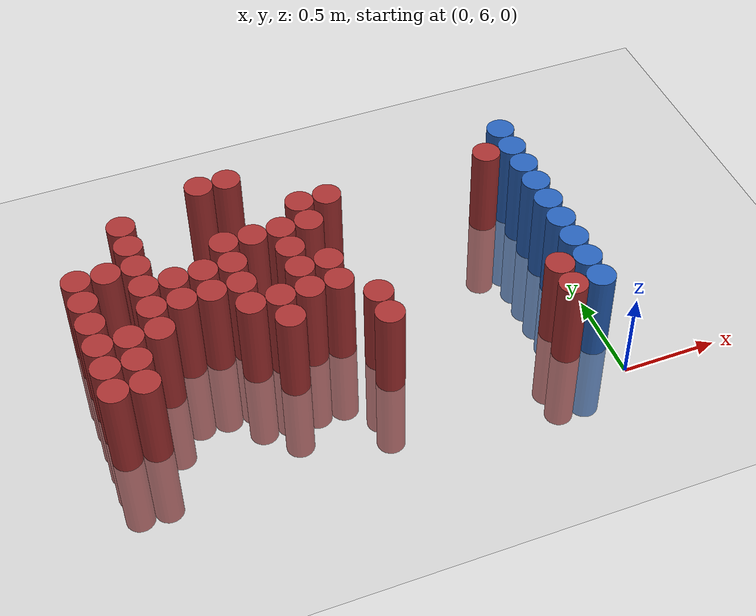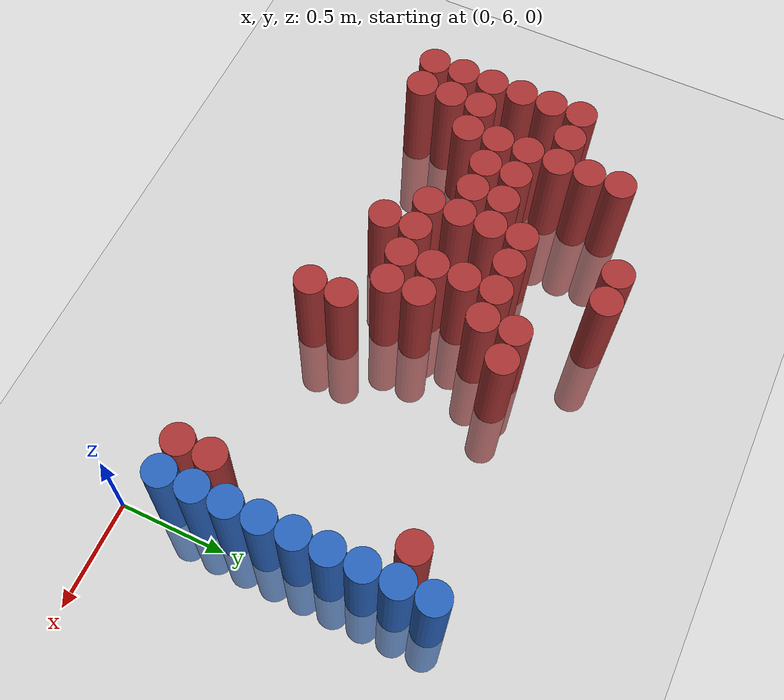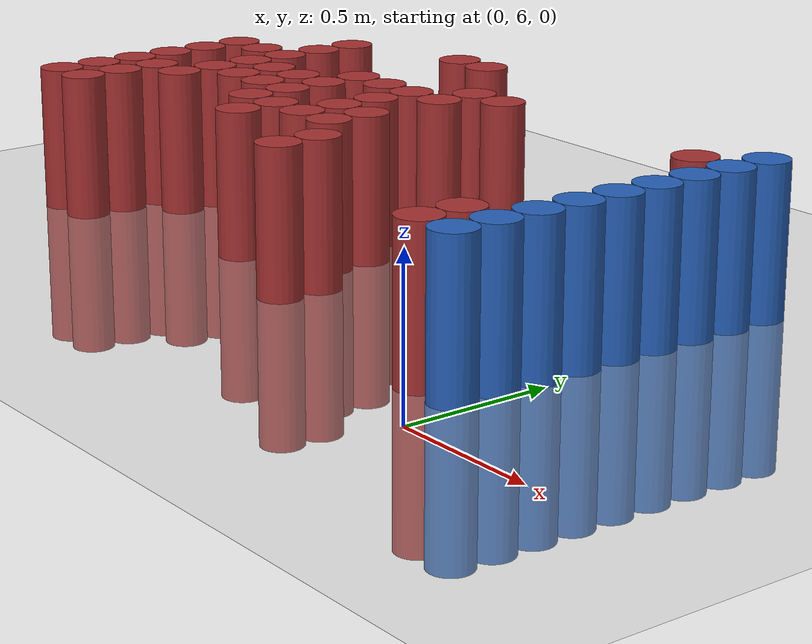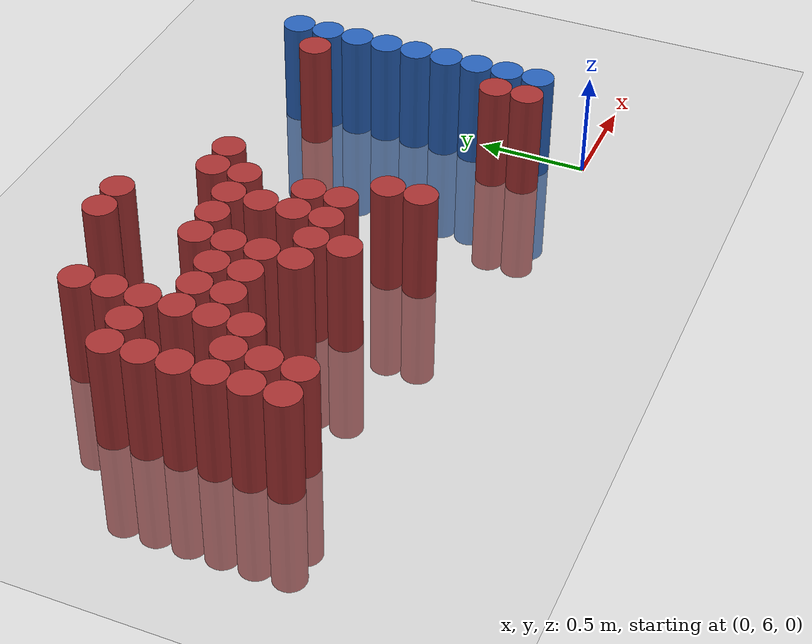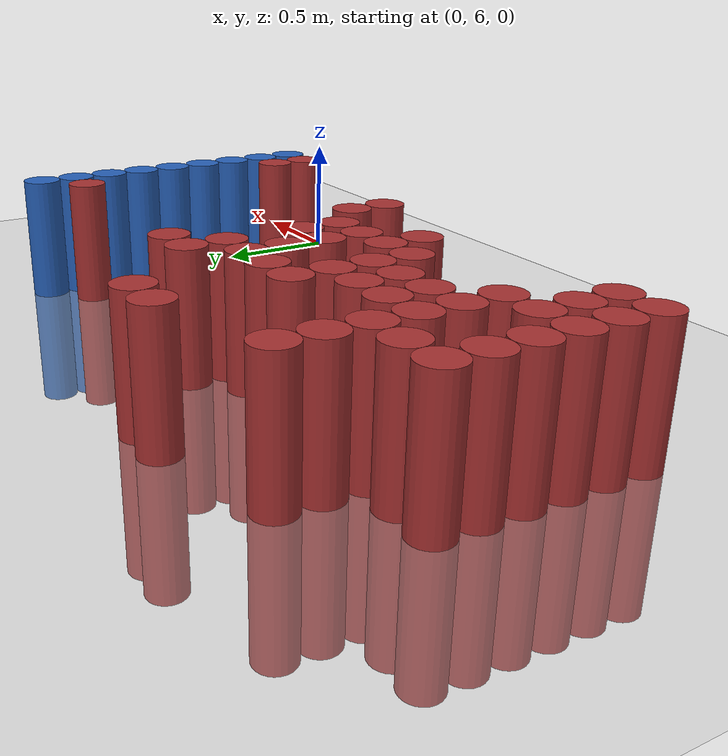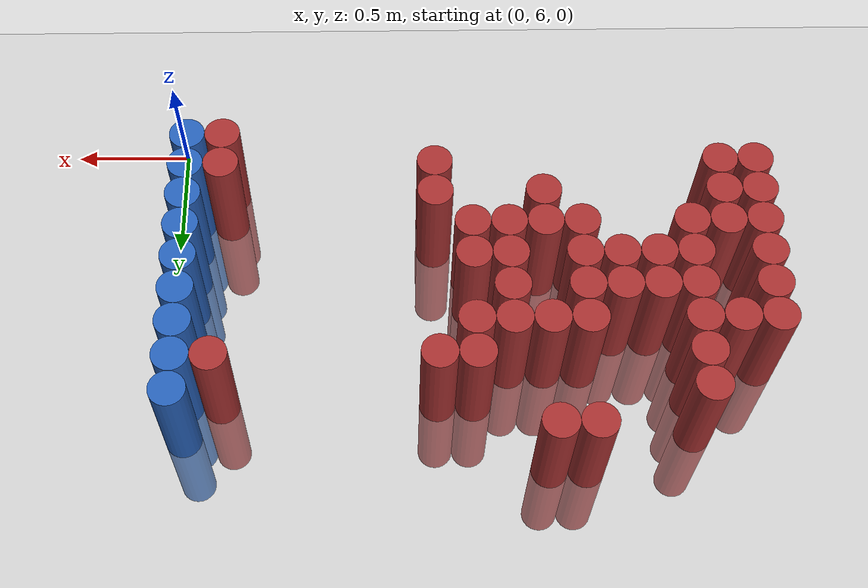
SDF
<sdf version="1.6">
 <world name="default">
  <model name="ground_plane">
   <static>1</static>
   <link name="link">
    <collision name="collision">
     <geometry><plane><normal>0 0 1</normal><size>100 100</size></plane></geometry>
     <surface><friction><ode><mu>100</mu><mu2>50</mu2></ode></friction></surface>
    </collision>
    <visual name="visual">
     <cast_shadows>0</cast_shadows>
     <geometry><plane><normal>0 0 1</normal><size>100 100</size></plane></geometry>
     <material>
      <script><uri>file://media/materials/scripts/gazebo.material</uri><name>Gazebo/Grey</name></script>
     </material>
    </visual>
   </link>
  </model>
  <model name="unit_cylinder_232">
   <static>1</static>
   <pose>-2.475000 6.375000 0.000000 0.000000 0.000000 0.000000</pose>
   <link name="link">
    <inertial>
     <mass>1</mass>
     <inertia><ixx>0.145833</ixx><ixy>0</ixy><ixz>0</ixz><iyy>0.145833</iyy><iyz>0</iyz><izz>0.125</izz></inertia>
    </inertial>
    <collision name="collision">
     <geometry><cylinder><radius>0.075000</radius><length>1</length></cylinder></geometry>
    </collision>
    <visual name="visual">
     <geometry><cylinder><radius>0.075000</radius><length>1</length></cylinder></geometry>
     <material>
      <ambient>0.648000 0.192000 0.192000 1</ambient>
      <diffuse>0.648000 0.192000 0.192000 1</diffuse>
     </material>
     <material>
      <script><name>Gazebo/Grey</name><uri>file://media/materials/scripts/gazebo.material</uri></script>
     </material>
    </visual>
   </link>
  </model>
  <model name="unit_cylinder_233">
   <static>1</static>
   <pose>-2.475000 6.525000 0.000000 0.000000 0.000000 0.000000</pose>
   <link name="link">
    <inertial>
     <mass>1</mass>
     <inertia><ixx>0.145833</ixx><ixy>0</ixy><ixz>0</ixz><iyy>0.145833</iyy><iyz>0</iyz><izz>0.125</izz></inertia>
    </inertial>
    <collision name="collision">
     <geometry><cylinder><radius>0.075000</radius><length>1</length></cylinder></geometry>
    </collision>
    <visual name="visual">
     <geometry><cylinder><radius>0.075000</radius><length>1</length></cylinder></geometry>
     <material>
      <ambient>0.648000 0.192000 0.192000 1</ambient>
      <diffuse>0.648000 0.192000 0.192000 1</diffuse>
     </material>
     <material>
      <script><name>Gazebo/Grey</name><uri>file://media/materials/scripts/gazebo.material</uri></script>
     </material>
    </visual>
   </link>
  </model>
  <model name="unit_cylinder_234">
   <static>1</static>
   <pose>-2.475000 6.675000 0.000000 0.000000 0.000000 0.000000</pose>
   <link name="link">
    <inertial>
     <mass>1</mass>
     <inertia><ixx>0.145833</ixx><ixy>0</ixy><ixz>0</ixz><iyy>0.145833</iyy><iyz>0</iyz><izz>0.125</izz></inertia>
    </inertial>
    <collision name="collision">
     <geometry><cylinder><radius>0.075000</radius><length>1</length></cylinder></geometry>
    </collision>
    <visual name="visual">
     <geometry><cylinder><radius>0.075000</radius><length>1</length></cylinder></geometry>
     <material>
      <ambient>0.648000 0.192000 0.192000 1</ambient>
      <diffuse>0.648000 0.192000 0.192000 1</diffuse>
     </material>
     <material>
      <script><name>Gazebo/Grey</name><uri>file://media/materials/scripts/gazebo.material</uri></script>
     </material>
    </visual>
   </link>
  </model>
  <model name="unit_cylinder_235">
   <static>1</static>
   <pose>-2.475000 6.825000 0.000000 0.000000 0.000000 0.000000</pose>
   <link name="link">
    <inertial>
     <mass>1</mass>
     <inertia><ixx>0.145833</ixx><ixy>0</ixy><ixz>0</ixz><iyy>0.145833</iyy><iyz>0</iyz><izz>0.125</izz></inertia>
    </inertial>
    <collision name="collision">
     <geometry><cylinder><radius>0.075000</radius><length>1</length></cylinder></geometry>
    </collision>
    <visual name="visual">
     <geometry><cylinder><radius>0.075000</radius><length>1</length></cylinder></geometry>
     <material>
      <ambient>0.648000 0.192000 0.192000 1</ambient>
      <diffuse>0.648000 0.192000 0.192000 1</diffuse>
     </material>
     <material>
      <script><name>Gazebo/Grey</name><uri>file://media/materials/scripts/gazebo.material</uri></script>
     </material>
    </visual>
   </link>
  </model>
  <model name="unit_cylinder_236">
   <static>1</static>
   <pose>-2.475000 6.975000 0.000000 0.000000 0.000000 0.000000</pose>
   <link name="link">
    <inertial>
     <mass>1</mass>
     <inertia><ixx>0.145833</ixx><ixy>0</ixy><ixz>0</ixz><iyy>0.145833</iyy><iyz>0</iyz><izz>0.125</izz></inertia>
    </inertial>
    <collision name="collision">
     <geometry><cylinder><radius>0.075000</radius><length>1</length></cylinder></geometry>
    </collision>
    <visual name="visual">
     <geometry><cylinder><radius>0.075000</radius><length>1</length></cylinder></geometry>
     <material>
      <ambient>0.648000 0.192000 0.192000 1</ambient>
      <diffuse>0.648000 0.192000 0.192000 1</diffuse>
     </material>
     <material>
      <script><name>Gazebo/Grey</name><uri>file://media/materials/scripts/gazebo.material</uri></script>
     </material>
    </visual>
   </link>
  </model>
  <model name="unit_cylinder_237">
   <static>1</static>
   <pose>-2.475000 7.125000 0.000000 0.000000 0.000000 0.000000</pose>
   <link name="link">
    <inertial>
     <mass>1</mass>
     <inertia><ixx>0.145833</ixx><ixy>0</ixy><ixz>0</ixz><iyy>0.145833</iyy><iyz>0</iyz><izz>0.125</izz></inertia>
    </inertial>
    <collision name="collision">
     <geometry><cylinder><radius>0.075000</radius><length>1</length></cylinder></geometry>
    </collision>
    <visual name="visual">
     <geometry><cylinder><radius>0.075000</radius><length>1</length></cylinder></geometry>
     <material>
      <ambient>0.648000 0.192000 0.192000 1</ambient>
      <diffuse>0.648000 0.192000 0.192000 1</diffuse>
     </material>
     <material>
      <script><name>Gazebo/Grey</name><uri>file://media/materials/scripts/gazebo.material</uri></script>
     </material>
    </visual>
   </link>
  </model>
  <model name="unit_cylinder_246">
   <static>1</static>
   <pose>-2.325000 6.375000 0.000000 0.000000 0.000000 0.000000</pose>
   <link name="link">
    <inertial>
     <mass>1</mass>
     <inertia><ixx>0.145833</ixx><ixy>0</ixy><ixz>0</ixz><iyy>0.145833</iyy><iyz>0</iyz><izz>0.125</izz></inertia>
    </inertial>
    <collision name="collision">
     <geometry><cylinder><radius>0.075000</radius><length>1</length></cylinder></geometry>
    </collision>
    <visual name="visual">
     <geometry><cylinder><radius>0.075000</radius><length>1</length></cylinder></geometry>
     <material>
      <ambient>0.648000 0.192000 0.192000 1</ambient>
      <diffuse>0.648000 0.192000 0.192000 1</diffuse>
     </material>
     <material>
      <script><name>Gazebo/Grey</name><uri>file://media/materials/scripts/gazebo.material</uri></script>
     </material>
    </visual>
   </link>
  </model>
  <model name="unit_cylinder_247">
   <static>1</static>
   <pose>-2.325000 6.525000 0.000000 0.000000 0.000000 0.000000</pose>
   <link name="link">
    <inertial>
     <mass>1</mass>
     <inertia><ixx>0.145833</ixx><ixy>0</ixy><ixz>0</ixz><iyy>0.145833</iyy><iyz>0</iyz><izz>0.125</izz></inertia>
    </inertial>
    <collision name="collision">
     <geometry><cylinder><radius>0.075000</radius><length>1</length></cylinder></geometry>
    </collision>
    <visual name="visual">
     <geometry><cylinder><radius>0.075000</radius><length>1</length></cylinder></geometry>
     <material>
      <ambient>0.648000 0.192000 0.192000 1</ambient>
      <diffuse>0.648000 0.192000 0.192000 1</diffuse>
     </material>
     <material>
      <script><name>Gazebo/Grey</name><uri>file://media/materials/scripts/gazebo.material</uri></script>
     </material>
    </visual>
   </link>
  </model>
  <model name="unit_cylinder_248">
   <static>1</static>
   <pose>-2.325000 6.675000 0.000000 0.000000 0.000000 0.000000</pose>
   <link name="link">
    <inertial>
     <mass>1</mass>
     <inertia><ixx>0.145833</ixx><ixy>0</ixy><ixz>0</ixz><iyy>0.145833</iyy><iyz>0</iyz><izz>0.125</izz></inertia>
    </inertial>
    <collision name="collision">
     <geometry><cylinder><radius>0.075000</radius><length>1</length></cylinder></geometry>
    </collision>
    <visual name="visual">
     <geometry><cylinder><radius>0.075000</radius><length>1</length></cylinder></geometry>
     <material>
      <ambient>0.648000 0.192000 0.192000 1</ambient>
      <diffuse>0.648000 0.192000 0.192000 1</diffuse>
     </material>
     <material>
      <script><name>Gazebo/Grey</name><uri>file://media/materials/scripts/gazebo.material</uri></script>
     </material>
    </visual>
   </link>
  </model>
  <model name="unit_cylinder_249">
   <static>1</static>
   <pose>-2.325000 7.125000 0.000000 0.000000 0.000000 0.000000</pose>
   <link name="link">
    <inertial>
     <mass>1</mass>
     <inertia><ixx>0.145833</ixx><ixy>0</ixy><ixz>0</ixz><iyy>0.145833</iyy><iyz>0</iyz><izz>0.125</izz></inertia>
    </inertial>
    <collision name="collision">
     <geometry><cylinder><radius>0.075000</radius><length>1</length></cylinder></geometry>
    </collision>
    <visual name="visual">
     <geometry><cylinder><radius>0.075000</radius><length>1</length></cylinder></geometry>
     <material>
      <ambient>0.648000 0.192000 0.192000 1</ambient>
      <diffuse>0.648000 0.192000 0.192000 1</diffuse>
     </material>
     <material>
      <script><name>Gazebo/Grey</name><uri>file://media/materials/scripts/gazebo.material</uri></script>
     </material>
    </visual>
   </link>
  </model>
  <model name="unit_cylinder_255">
   <static>1</static>
   <pose>-2.175000 6.675000 0.000000 0.000000 0.000000 0.000000</pose>
   <link name="link">
    <inertial>
     <mass>1</mass>
     <inertia><ixx>0.145833</ixx><ixy>0</ixy><ixz>0</ixz><iyy>0.145833</iyy><iyz>0</iyz><izz>0.125</izz></inertia>
    </inertial>
    <collision name="collision">
     <geometry><cylinder><radius>0.075000</radius><length>1</length></cylinder></geometry>
    </collision>
    <visual name="visual">
     <geometry><cylinder><radius>0.075000</radius><length>1</length></cylinder></geometry>
     <material>
      <ambient>0.648000 0.192000 0.192000 1</ambient>
      <diffuse>0.648000 0.192000 0.192000 1</diffuse>
     </material>
     <material>
      <script><name>Gazebo/Grey</name><uri>file://media/materials/scripts/gazebo.material</uri></script>
     </material>
    </visual>
   </link>
  </model>
  <model name="unit_cylinder_256">
   <static>1</static>
   <pose>-2.175000 6.825000 0.000000 0.000000 0.000000 0.000000</pose>
   <link name="link">
    <inertial>
     <mass>1</mass>
     <inertia><ixx>0.145833</ixx><ixy>0</ixy><ixz>0</ixz><iyy>0.145833</iyy><iyz>0</iyz><izz>0.125</izz></inertia>
    </inertial>
    <collision name="collision">
     <geometry><cylinder><radius>0.075000</radius><length>1</length></cylinder></geometry>
    </collision>
    <visual name="visual">
     <geometry><cylinder><radius>0.075000</radius><length>1</length></cylinder></geometry>
     <material>
      <ambient>0.648000 0.192000 0.192000 1</ambient>
      <diffuse>0.648000 0.192000 0.192000 1</diffuse>
     </material>
     <material>
      <script><name>Gazebo/Grey</name><uri>file://media/materials/scripts/gazebo.material</uri></script>
     </material>
    </visual>
   </link>
  </model>
  <model name="unit_cylinder_257">
   <static>1</static>
   <pose>-2.175000 6.975000 0.000000 0.000000 0.000000 0.000000</pose>
   <link name="link">
    <inertial>
     <mass>1</mass>
     <inertia><ixx>0.145833</ixx><ixy>0</ixy><ixz>0</ixz><iyy>0.145833</iyy><iyz>0</iyz><izz>0.125</izz></inertia>
    </inertial>
    <collision name="collision">
     <geometry><cylinder><radius>0.075000</radius><length>1</length></cylinder></geometry>
    </collision>
    <visual name="visual">
     <geometry><cylinder><radius>0.075000</radius><length>1</length></cylinder></geometry>
     <material>
      <ambient>0.648000 0.192000 0.192000 1</ambient>
      <diffuse>0.648000 0.192000 0.192000 1</diffuse>
     </material>
     <material>
      <script><name>Gazebo/Grey</name><uri>file://media/materials/scripts/gazebo.material</uri></script>
     </material>
    </visual>
   </link>
  </model>
  <model name="unit_cylinder_258">
   <static>1</static>
   <pose>-2.175000 7.125000 0.000000 0.000000 0.000000 0.000000</pose>
   <link name="link">
    <inertial>
     <mass>1</mass>
     <inertia><ixx>0.145833</ixx><ixy>0</ixy><ixz>0</ixz><iyy>0.145833</iyy><iyz>0</iyz><izz>0.125</izz></inertia>
    </inertial>
    <collision name="collision">
     <geometry><cylinder><radius>0.075000</radius><length>1</length></cylinder></geometry>
    </collision>
    <visual name="visual">
     <geometry><cylinder><radius>0.075000</radius><length>1</length></cylinder></geometry>
     <material>
      <ambient>0.648000 0.192000 0.192000 1</ambient>
      <diffuse>0.648000 0.192000 0.192000 1</diffuse>
     </material>
     <material>
      <script><name>Gazebo/Grey</name><uri>file://media/materials/scripts/gazebo.material</uri></script>
     </material>
    </visual>
   </link>
  </model>
  <model name="unit_cylinder_259">
   <static>1</static>
   <pose>-2.175000 7.275000 0.000000 0.000000 0.000000 0.000000</pose>
   <link name="link">
    <inertial>
     <mass>1</mass>
     <inertia><ixx>0.145833</ixx><ixy>0</ixy><ixz>0</ixz><iyy>0.145833</iyy><iyz>0</iyz><izz>0.125</izz></inertia>
    </inertial>
    <collision name="collision">
     <geometry><cylinder><radius>0.075000</radius><length>1</length></cylinder></geometry>
    </collision>
    <visual name="visual">
     <geometry><cylinder><radius>0.075000</radius><length>1</length></cylinder></geometry>
     <material>
      <ambient>0.648000 0.192000 0.192000 1</ambient>
      <diffuse>0.648000 0.192000 0.192000 1</diffuse>
     </material>
     <material>
      <script><name>Gazebo/Grey</name><uri>file://media/materials/scripts/gazebo.material</uri></script>
     </material>
    </visual>
   </link>
  </model>
  <model name="unit_cylinder_260">
   <static>1</static>
   <pose>-2.175000 7.425000 0.000000 0.000000 0.000000 0.000000</pose>
   <link name="link">
    <inertial>
     <mass>1</mass>
     <inertia><ixx>0.145833</ixx><ixy>0</ixy><ixz>0</ixz><iyy>0.145833</iyy><iyz>0</iyz><izz>0.125</izz></inertia>
    </inertial>
    <collision name="collision">
     <geometry><cylinder><radius>0.075000</radius><length>1</length></cylinder></geometry>
    </collision>
    <visual name="visual">
     <geometry><cylinder><radius>0.075000</radius><length>1</length></cylinder></geometry>
     <material>
      <ambient>0.648000 0.192000 0.192000 1</ambient>
      <diffuse>0.648000 0.192000 0.192000 1</diffuse>
     </material>
     <material>
      <script><name>Gazebo/Grey</name><uri>file://media/materials/scripts/gazebo.material</uri></script>
     </material>
    </visual>
   </link>
  </model>
  <model name="unit_cylinder_263">
   <static>1</static>
   <pose>-2.025000 6.825000 0.000000 0.000000 0.000000 0.000000</pose>
   <link name="link">
    <inertial>
     <mass>1</mass>
     <inertia><ixx>0.145833</ixx><ixy>0</ixy><ixz>0</ixz><iyy>0.145833</iyy><iyz>0</iyz><izz>0.125</izz></inertia>
    </inertial>
    <collision name="collision">
     <geometry><cylinder><radius>0.075000</radius><length>1</length></cylinder></geometry>
    </collision>
    <visual name="visual">
     <geometry><cylinder><radius>0.075000</radius><length>1</length></cylinder></geometry>
     <material>
      <ambient>0.648000 0.192000 0.192000 1</ambient>
      <diffuse>0.648000 0.192000 0.192000 1</diffuse>
     </material>
     <material>
      <script><name>Gazebo/Grey</name><uri>file://media/materials/scripts/gazebo.material</uri></script>
     </material>
    </visual>
   </link>
  </model>
  <model name="unit_cylinder_264">
   <static>1</static>
   <pose>-2.025000 6.975000 0.000000 0.000000 0.000000 0.000000</pose>
   <link name="link">
    <inertial>
     <mass>1</mass>
     <inertia><ixx>0.145833</ixx><ixy>0</ixy><ixz>0</ixz><iyy>0.145833</iyy><iyz>0</iyz><izz>0.125</izz></inertia>
    </inertial>
    <collision name="collision">
     <geometry><cylinder><radius>0.075000</radius><length>1</length></cylinder></geometry>
    </collision>
    <visual name="visual">
     <geometry><cylinder><radius>0.075000</radius><length>1</length></cylinder></geometry>
     <material>
      <ambient>0.648000 0.192000 0.192000 1</ambient>
      <diffuse>0.648000 0.192000 0.192000 1</diffuse>
     </material>
     <material>
      <script><name>Gazebo/Grey</name><uri>file://media/materials/scripts/gazebo.material</uri></script>
     </material>
    </visual>
   </link>
  </model>
  <model name="unit_cylinder_271">
   <static>1</static>
   <pose>-1.875000 6.825000 0.000000 0.000000 0.000000 0.000000</pose>
   <link name="link">
    <inertial>
     <mass>1</mass>
     <inertia><ixx>0.145833</ixx><ixy>0</ixy><ixz>0</ixz><iyy>0.145833</iyy><iyz>0</iyz><izz>0.125</izz></inertia>
    </inertial>
    <collision name="collision">
     <geometry><cylinder><radius>0.075000</radius><length>1</length></cylinder></geometry>
    </collision>
    <visual name="visual">
     <geometry><cylinder><radius>0.075000</radius><length>1</length></cylinder></geometry>
     <material>
      <ambient>0.648000 0.192000 0.192000 1</ambient>
      <diffuse>0.648000 0.192000 0.192000 1</diffuse>
     </material>
     <material>
      <script><name>Gazebo/Grey</name><uri>file://media/materials/scripts/gazebo.material</uri></script>
     </material>
    </visual>
   </link>
  </model>
  <model name="unit_cylinder_272">
   <static>1</static>
   <pose>-1.875000 6.975000 0.000000 0.000000 0.000000 0.000000</pose>
   <link name="link">
    <inertial>
     <mass>1</mass>
     <inertia><ixx>0.145833</ixx><ixy>0</ixy><ixz>0</ixz><iyy>0.145833</iyy><iyz>0</iyz><izz>0.125</izz></inertia>
    </inertial>
    <collision name="collision">
     <geometry><cylinder><radius>0.075000</radius><length>1</length></cylinder></geometry>
    </collision>
    <visual name="visual">
     <geometry><cylinder><radius>0.075000</radius><length>1</length></cylinder></geometry>
     <material>
      <ambient>0.648000 0.192000 0.192000 1</ambient>
      <diffuse>0.648000 0.192000 0.192000 1</diffuse>
     </material>
     <material>
      <script><name>Gazebo/Grey</name><uri>file://media/materials/scripts/gazebo.material</uri></script>
     </material>
    </visual>
   </link>
  </model>
  <model name="unit_cylinder_281">
   <static>1</static>
   <pose>-1.725000 6.675000 0.000000 0.000000 0.000000 0.000000</pose>
   <link name="link">
    <inertial>
     <mass>1</mass>
     <inertia><ixx>0.145833</ixx><ixy>0</ixy><ixz>0</ixz><iyy>0.145833</iyy><iyz>0</iyz><izz>0.125</izz></inertia>
    </inertial>
    <collision name="collision">
     <geometry><cylinder><radius>0.075000</radius><length>1</length></cylinder></geometry>
    </collision>
    <visual name="visual">
     <geometry><cylinder><radius>0.075000</radius><length>1</length></cylinder></geometry>
     <material>
      <ambient>0.648000 0.192000 0.192000 1</ambient>
      <diffuse>0.648000 0.192000 0.192000 1</diffuse>
     </material>
     <material>
      <script><name>Gazebo/Grey</name><uri>file://media/materials/scripts/gazebo.material</uri></script>
     </material>
    </visual>
   </link>
  </model>
  <model name="unit_cylinder_282">
   <static>1</static>
   <pose>-1.725000 6.825000 0.000000 0.000000 0.000000 0.000000</pose>
   <link name="link">
    <inertial>
     <mass>1</mass>
     <inertia><ixx>0.145833</ixx><ixy>0</ixy><ixz>0</ixz><iyy>0.145833</iyy><iyz>0</iyz><izz>0.125</izz></inertia>
    </inertial>
    <collision name="collision">
     <geometry><cylinder><radius>0.075000</radius><length>1</length></cylinder></geometry>
    </collision>
    <visual name="visual">
     <geometry><cylinder><radius>0.075000</radius><length>1</length></cylinder></geometry>
     <material>
      <ambient>0.648000 0.192000 0.192000 1</ambient>
      <diffuse>0.648000 0.192000 0.192000 1</diffuse>
     </material>
     <material>
      <script><name>Gazebo/Grey</name><uri>file://media/materials/scripts/gazebo.material</uri></script>
     </material>
    </visual>
   </link>
  </model>
  <model name="unit_cylinder_283">
   <static>1</static>
   <pose>-1.725000 6.975000 0.000000 0.000000 0.000000 0.000000</pose>
   <link name="link">
    <inertial>
     <mass>1</mass>
     <inertia><ixx>0.145833</ixx><ixy>0</ixy><ixz>0</ixz><iyy>0.145833</iyy><iyz>0</iyz><izz>0.125</izz></inertia>
    </inertial>
    <collision name="collision">
     <geometry><cylinder><radius>0.075000</radius><length>1</length></cylinder></geometry>
    </collision>
    <visual name="visual">
     <geometry><cylinder><radius>0.075000</radius><length>1</length></cylinder></geometry>
     <material>
      <ambient>0.648000 0.192000 0.192000 1</ambient>
      <diffuse>0.648000 0.192000 0.192000 1</diffuse>
     </material>
     <material>
      <script><name>Gazebo/Grey</name><uri>file://media/materials/scripts/gazebo.material</uri></script>
     </material>
    </visual>
   </link>
  </model>
  <model name="unit_cylinder_284">
   <static>1</static>
   <pose>-1.725000 7.125000 0.000000 0.000000 0.000000 0.000000</pose>
   <link name="link">
    <inertial>
     <mass>1</mass>
     <inertia><ixx>0.145833</ixx><ixy>0</ixy><ixz>0</ixz><iyy>0.145833</iyy><iyz>0</iyz><izz>0.125</izz></inertia>
    </inertial>
    <collision name="collision">
     <geometry><cylinder><radius>0.075000</radius><length>1</length></cylinder></geometry>
    </collision>
    <visual name="visual">
     <geometry><cylinder><radius>0.075000</radius><length>1</length></cylinder></geometry>
     <material>
      <ambient>0.648000 0.192000 0.192000 1</ambient>
      <diffuse>0.648000 0.192000 0.192000 1</diffuse>
     </material>
     <material>
      <script><name>Gazebo/Grey</name><uri>file://media/materials/scripts/gazebo.material</uri></script>
     </material>
    </visual>
   </link>
  </model>
  <model name="unit_cylinder_285">
   <static>1</static>
   <pose>-1.725000 7.575000 0.000000 0.000000 0.000000 0.000000</pose>
   <link name="link">
    <inertial>
     <mass>1</mass>
     <inertia><ixx>0.145833</ixx><ixy>0</ixy><ixz>0</ixz><iyy>0.145833</iyy><iyz>0</iyz><izz>0.125</izz></inertia>
    </inertial>
    <collision name="collision">
     <geometry><cylinder><radius>0.075000</radius><length>1</length></cylinder></geometry>
    </collision>
    <visual name="visual">
     <geometry><cylinder><radius>0.075000</radius><length>1</length></cylinder></geometry>
     <material>
      <ambient>0.648000 0.192000 0.192000 1</ambient>
      <diffuse>0.648000 0.192000 0.192000 1</diffuse>
     </material>
     <material>
      <script><name>Gazebo/Grey</name><uri>file://media/materials/scripts/gazebo.material</uri></script>
     </material>
    </visual>
   </link>
  </model>
  <model name="unit_cylinder_294">
   <static>1</static>
   <pose>-1.575000 6.525000 0.000000 0.000000 0.000000 0.000000</pose>
   <link name="link">
    <inertial>
     <mass>1</mass>
     <inertia><ixx>0.145833</ixx><ixy>0</ixy><ixz>0</ixz><iyy>0.145833</iyy><iyz>0</iyz><izz>0.125</izz></inertia>
    </inertial>
    <collision name="collision">
     <geometry><cylinder><radius>0.075000</radius><length>1</length></cylinder></geometry>
    </collision>
    <visual name="visual">
     <geometry><cylinder><radius>0.075000</radius><length>1</length></cylinder></geometry>
     <material>
      <ambient>0.648000 0.192000 0.192000 1</ambient>
      <diffuse>0.648000 0.192000 0.192000 1</diffuse>
     </material>
     <material>
      <script><name>Gazebo/Grey</name><uri>file://media/materials/scripts/gazebo.material</uri></script>
     </material>
    </visual>
   </link>
  </model>
  <model name="unit_cylinder_295">
   <static>1</static>
   <pose>-1.575000 6.675000 0.000000 0.000000 0.000000 0.000000</pose>
   <link name="link">
    <inertial>
     <mass>1</mass>
     <inertia><ixx>0.145833</ixx><ixy>0</ixy><ixz>0</ixz><iyy>0.145833</iyy><iyz>0</iyz><izz>0.125</izz></inertia>
    </inertial>
    <collision name="collision">
     <geometry><cylinder><radius>0.075000</radius><length>1</length></cylinder></geometry>
    </collision>
    <visual name="visual">
     <geometry><cylinder><radius>0.075000</radius><length>1</length></cylinder></geometry>
     <material>
      <ambient>0.648000 0.192000 0.192000 1</ambient>
      <diffuse>0.648000 0.192000 0.192000 1</diffuse>
     </material>
     <material>
      <script><name>Gazebo/Grey</name><uri>file://media/materials/scripts/gazebo.material</uri></script>
     </material>
    </visual>
   </link>
  </model>
  <model name="unit_cylinder_296">
   <static>1</static>
   <pose>-1.575000 7.125000 0.000000 0.000000 0.000000 0.000000</pose>
   <link name="link">
    <inertial>
     <mass>1</mass>
     <inertia><ixx>0.145833</ixx><ixy>0</ixy><ixz>0</ixz><iyy>0.145833</iyy><iyz>0</iyz><izz>0.125</izz></inertia>
    </inertial>
    <collision name="collision">
     <geometry><cylinder><radius>0.075000</radius><length>1</length></cylinder></geometry>
    </collision>
    <visual name="visual">
     <geometry><cylinder><radius>0.075000</radius><length>1</length></cylinder></geometry>
     <material>
      <ambient>0.648000 0.192000 0.192000 1</ambient>
      <diffuse>0.648000 0.192000 0.192000 1</diffuse>
     </material>
     <material>
      <script><name>Gazebo/Grey</name><uri>file://media/materials/scripts/gazebo.material</uri></script>
     </material>
    </visual>
   </link>
  </model>
  <model name="unit_cylinder_297">
   <static>1</static>
   <pose>-1.575000 7.575000 0.000000 0.000000 0.000000 0.000000</pose>
   <link name="link">
    <inertial>
     <mass>1</mass>
     <inertia><ixx>0.145833</ixx><ixy>0</ixy><ixz>0</ixz><iyy>0.145833</iyy><iyz>0</iyz><izz>0.125</izz></inertia>
    </inertial>
    <collision name="collision">
     <geometry><cylinder><radius>0.075000</radius><length>1</length></cylinder></geometry>
    </collision>
    <visual name="visual">
     <geometry><cylinder><radius>0.075000</radius><length>1</length></cylinder></geometry>
     <material>
      <ambient>0.648000 0.192000 0.192000 1</ambient>
      <diffuse>0.648000 0.192000 0.192000 1</diffuse>
     </material>
     <material>
      <script><name>Gazebo/Grey</name><uri>file://media/materials/scripts/gazebo.material</uri></script>
     </material>
    </visual>
   </link>
  </model>
  <model name="unit_cylinder_305">
   <static>1</static>
   <pose>-1.425000 6.675000 0.000000 0.000000 0.000000 0.000000</pose>
   <link name="link">
    <inertial>
     <mass>1</mass>
     <inertia><ixx>0.145833</ixx><ixy>0</ixy><ixz>0</ixz><iyy>0.145833</iyy><iyz>0</iyz><izz>0.125</izz></inertia>
    </inertial>
    <collision name="collision">
     <geometry><cylinder><radius>0.075000</radius><length>1</length></cylinder></geometry>
    </collision>
    <visual name="visual">
     <geometry><cylinder><radius>0.075000</radius><length>1</length></cylinder></geometry>
     <material>
      <ambient>0.648000 0.192000 0.192000 1</ambient>
      <diffuse>0.648000 0.192000 0.192000 1</diffuse>
     </material>
     <material>
      <script><name>Gazebo/Grey</name><uri>file://media/materials/scripts/gazebo.material</uri></script>
     </material>
    </visual>
   </link>
  </model>
  <model name="unit_cylinder_306">
   <static>1</static>
   <pose>-1.425000 6.825000 0.000000 0.000000 0.000000 0.000000</pose>
   <link name="link">
    <inertial>
     <mass>1</mass>
     <inertia><ixx>0.145833</ixx><ixy>0</ixy><ixz>0</ixz><iyy>0.145833</iyy><iyz>0</iyz><izz>0.125</izz></inertia>
    </inertial>
    <collision name="collision">
     <geometry><cylinder><radius>0.075000</radius><length>1</length></cylinder></geometry>
    </collision>
    <visual name="visual">
     <geometry><cylinder><radius>0.075000</radius><length>1</length></cylinder></geometry>
     <material>
      <ambient>0.648000 0.192000 0.192000 1</ambient>
      <diffuse>0.648000 0.192000 0.192000 1</diffuse>
     </material>
     <material>
      <script><name>Gazebo/Grey</name><uri>file://media/materials/scripts/gazebo.material</uri></script>
     </material>
    </visual>
   </link>
  </model>
  <model name="unit_cylinder_307">
   <static>1</static>
   <pose>-1.425000 6.975000 0.000000 0.000000 0.000000 0.000000</pose>
   <link name="link">
    <inertial>
     <mass>1</mass>
     <inertia><ixx>0.145833</ixx><ixy>0</ixy><ixz>0</ixz><iyy>0.145833</iyy><iyz>0</iyz><izz>0.125</izz></inertia>
    </inertial>
    <collision name="collision">
     <geometry><cylinder><radius>0.075000</radius><length>1</length></cylinder></geometry>
    </collision>
    <visual name="visual">
     <geometry><cylinder><radius>0.075000</radius><length>1</length></cylinder></geometry>
     <material>
      <ambient>0.648000 0.192000 0.192000 1</ambient>
      <diffuse>0.648000 0.192000 0.192000 1</diffuse>
     </material>
     <material>
      <script><name>Gazebo/Grey</name><uri>file://media/materials/scripts/gazebo.material</uri></script>
     </material>
    </visual>
   </link>
  </model>
  <model name="unit_cylinder_308">
   <static>1</static>
   <pose>-1.425000 7.125000 0.000000 0.000000 0.000000 0.000000</pose>
   <link name="link">
    <inertial>
     <mass>1</mass>
     <inertia><ixx>0.145833</ixx><ixy>0</ixy><ixz>0</ixz><iyy>0.145833</iyy><iyz>0</iyz><izz>0.125</izz></inertia>
    </inertial>
    <collision name="collision">
     <geometry><cylinder><radius>0.075000</radius><length>1</length></cylinder></geometry>
    </collision>
    <visual name="visual">
     <geometry><cylinder><radius>0.075000</radius><length>1</length></cylinder></geometry>
     <material>
      <ambient>0.648000 0.192000 0.192000 1</ambient>
      <diffuse>0.648000 0.192000 0.192000 1</diffuse>
     </material>
     <material>
      <script><name>Gazebo/Grey</name><uri>file://media/materials/scripts/gazebo.material</uri></script>
     </material>
    </visual>
   </link>
  </model>
  <model name="unit_cylinder_316">
   <static>1</static>
   <pose>-1.275000 6.675000 0.000000 0.000000 0.000000 0.000000</pose>
   <link name="link">
    <inertial>
     <mass>1</mass>
     <inertia><ixx>0.145833</ixx><ixy>0</ixy><ixz>0</ixz><iyy>0.145833</iyy><iyz>0</iyz><izz>0.125</izz></inertia>
    </inertial>
    <collision name="collision">
     <geometry><cylinder><radius>0.075000</radius><length>1</length></cylinder></geometry>
    </collision>
    <visual name="visual">
     <geometry><cylinder><radius>0.075000</radius><length>1</length></cylinder></geometry>
     <material>
      <ambient>0.648000 0.192000 0.192000 1</ambient>
      <diffuse>0.648000 0.192000 0.192000 1</diffuse>
     </material>
     <material>
      <script><name>Gazebo/Grey</name><uri>file://media/materials/scripts/gazebo.material</uri></script>
     </material>
    </visual>
   </link>
  </model>
  <model name="unit_cylinder_317">
   <static>1</static>
   <pose>-1.275000 6.825000 0.000000 0.000000 0.000000 0.000000</pose>
   <link name="link">
    <inertial>
     <mass>1</mass>
     <inertia><ixx>0.145833</ixx><ixy>0</ixy><ixz>0</ixz><iyy>0.145833</iyy><iyz>0</iyz><izz>0.125</izz></inertia>
    </inertial>
    <collision name="collision">
     <geometry><cylinder><radius>0.075000</radius><length>1</length></cylinder></geometry>
    </collision>
    <visual name="visual">
     <geometry><cylinder><radius>0.075000</radius><length>1</length></cylinder></geometry>
     <material>
      <ambient>0.648000 0.192000 0.192000 1</ambient>
      <diffuse>0.648000 0.192000 0.192000 1</diffuse>
     </material>
     <material>
      <script><name>Gazebo/Grey</name><uri>file://media/materials/scripts/gazebo.material</uri></script>
     </material>
    </visual>
   </link>
  </model>
  <model name="unit_cylinder_318">
   <static>1</static>
   <pose>-1.275000 7.125000 0.000000 0.000000 0.000000 0.000000</pose>
   <link name="link">
    <inertial>
     <mass>1</mass>
     <inertia><ixx>0.145833</ixx><ixy>0</ixy><ixz>0</ixz><iyy>0.145833</iyy><iyz>0</iyz><izz>0.125</izz></inertia>
    </inertial>
    <collision name="collision">
     <geometry><cylinder><radius>0.075000</radius><length>1</length></cylinder></geometry>
    </collision>
    <visual name="visual">
     <geometry><cylinder><radius>0.075000</radius><length>1</length></cylinder></geometry>
     <material>
      <ambient>0.648000 0.192000 0.192000 1</ambient>
      <diffuse>0.648000 0.192000 0.192000 1</diffuse>
     </material>
     <material>
      <script><name>Gazebo/Grey</name><uri>file://media/materials/scripts/gazebo.material</uri></script>
     </material>
    </visual>
   </link>
  </model>
  <model name="unit_cylinder_319">
   <static>1</static>
   <pose>-1.275000 7.275000 0.000000 0.000000 0.000000 0.000000</pose>
   <link name="link">
    <inertial>
     <mass>1</mass>
     <inertia><ixx>0.145833</ixx><ixy>0</ixy><ixz>0</ixz><iyy>0.145833</iyy><iyz>0</iyz><izz>0.125</izz></inertia>
    </inertial>
    <collision name="collision">
     <geometry><cylinder><radius>0.075000</radius><length>1</length></cylinder></geometry>
    </collision>
    <visual name="visual">
     <geometry><cylinder><radius>0.075000</radius><length>1</length></cylinder></geometry>
     <material>
      <ambient>0.648000 0.192000 0.192000 1</ambient>
      <diffuse>0.648000 0.192000 0.192000 1</diffuse>
     </material>
     <material>
      <script><name>Gazebo/Grey</name><uri>file://media/materials/scripts/gazebo.material</uri></script>
     </material>
    </visual>
   </link>
  </model>
  <model name="unit_cylinder_323">
   <static>1</static>
   <pose>-1.125000 6.375000 0.000000 0.000000 0.000000 0.000000</pose>
   <link name="link">
    <inertial>
     <mass>1</mass>
     <inertia><ixx>0.145833</ixx><ixy>0</ixy><ixz>0</ixz><iyy>0.145833</iyy><iyz>0</iyz><izz>0.125</izz></inertia>
    </inertial>
    <collision name="collision">
     <geometry><cylinder><radius>0.075000</radius><length>1</length></cylinder></geometry>
    </collision>
    <visual name="visual">
     <geometry><cylinder><radius>0.075000</radius><length>1</length></cylinder></geometry>
     <material>
      <ambient>0.648000 0.192000 0.192000 1</ambient>
      <diffuse>0.648000 0.192000 0.192000 1</diffuse>
     </material>
     <material>
      <script><name>Gazebo/Grey</name><uri>file://media/materials/scripts/gazebo.material</uri></script>
     </material>
    </visual>
   </link>
  </model>
  <model name="unit_cylinder_324">
   <static>1</static>
   <pose>-1.125000 6.525000 0.000000 0.000000 0.000000 0.000000</pose>
   <link name="link">
    <inertial>
     <mass>1</mass>
     <inertia><ixx>0.145833</ixx><ixy>0</ixy><ixz>0</ixz><iyy>0.145833</iyy><iyz>0</iyz><izz>0.125</izz></inertia>
    </inertial>
    <collision name="collision">
     <geometry><cylinder><radius>0.075000</radius><length>1</length></cylinder></geometry>
    </collision>
    <visual name="visual">
     <geometry><cylinder><radius>0.075000</radius><length>1</length></cylinder></geometry>
     <material>
      <ambient>0.648000 0.192000 0.192000 1</ambient>
      <diffuse>0.648000 0.192000 0.192000 1</diffuse>
     </material>
     <material>
      <script><name>Gazebo/Grey</name><uri>file://media/materials/scripts/gazebo.material</uri></script>
     </material>
    </visual>
   </link>
  </model>
  <model name="unit_cylinder_325">
   <static>1</static>
   <pose>-1.125000 7.275000 0.000000 0.000000 0.000000 0.000000</pose>
   <link name="link">
    <inertial>
     <mass>1</mass>
     <inertia><ixx>0.145833</ixx><ixy>0</ixy><ixz>0</ixz><iyy>0.145833</iyy><iyz>0</iyz><izz>0.125</izz></inertia>
    </inertial>
    <collision name="collision">
     <geometry><cylinder><radius>0.075000</radius><length>1</length></cylinder></geometry>
    </collision>
    <visual name="visual">
     <geometry><cylinder><radius>0.075000</radius><length>1</length></cylinder></geometry>
     <material>
      <ambient>0.648000 0.192000 0.192000 1</ambient>
      <diffuse>0.648000 0.192000 0.192000 1</diffuse>
     </material>
     <material>
      <script><name>Gazebo/Grey</name><uri>file://media/materials/scripts/gazebo.material</uri></script>
     </material>
    </visual>
   </link>
  </model>
  <model name="unit_cylinder_328">
   <static>1</static>
   <pose>-0.225000 6.225000 0.000000 0.000000 0.000000 0.000000</pose>
   <link name="link">
    <inertial>
     <mass>1</mass>
     <inertia><ixx>0.145833</ixx><ixy>0</ixy><ixz>0</ixz><iyy>0.145833</iyy><iyz>0</iyz><izz>0.125</izz></inertia>
    </inertial>
    <collision name="collision">
     <geometry><cylinder><radius>0.075000</radius><length>1</length></cylinder></geometry>
    </collision>
    <visual name="visual">
     <geometry><cylinder><radius>0.075000</radius><length>1</length></cylinder></geometry>
     <material>
      <ambient>0.648000 0.192000 0.192000 1</ambient>
      <diffuse>0.648000 0.192000 0.192000 1</diffuse>
     </material>
     <material>
      <script><name>Gazebo/Grey</name><uri>file://media/materials/scripts/gazebo.material</uri></script>
     </material>
    </visual>
   </link>
  </model>
  <model name="unit_cylinder_329">
   <static>1</static>
   <pose>-0.225000 6.375000 0.000000 0.000000 0.000000 0.000000</pose>
   <link name="link">
    <inertial>
     <mass>1</mass>
     <inertia><ixx>0.145833</ixx><ixy>0</ixy><ixz>0</ixz><iyy>0.145833</iyy><iyz>0</iyz><izz>0.125</izz></inertia>
    </inertial>
    <collision name="collision">
     <geometry><cylinder><radius>0.075000</radius><length>1</length></cylinder></geometry>
    </collision>
    <visual name="visual">
     <geometry><cylinder><radius>0.075000</radius><length>1</length></cylinder></geometry>
     <material>
      <ambient>0.648000 0.192000 0.192000 1</ambient>
      <diffuse>0.648000 0.192000 0.192000 1</diffuse>
     </material>
     <material>
      <script><name>Gazebo/Grey</name><uri>file://media/materials/scripts/gazebo.material</uri></script>
     </material>
    </visual>
   </link>
  </model>
  <model name="unit_cylinder_330">
   <static>1</static>
   <pose>-0.225000 7.275000 0.000000 0.000000 0.000000 0.000000</pose>
   <link name="link">
    <inertial>
     <mass>1</mass>
     <inertia><ixx>0.145833</ixx><ixy>0</ixy><ixz>0</ixz><iyy>0.145833</iyy><iyz>0</iyz><izz>0.125</izz></inertia>
    </inertial>
    <collision name="collision">
     <geometry><cylinder><radius>0.075000</radius><length>1</length></cylinder></geometry>
    </collision>
    <visual name="visual">
     <geometry><cylinder><radius>0.075000</radius><length>1</length></cylinder></geometry>
     <material>
      <ambient>0.648000 0.192000 0.192000 1</ambient>
      <diffuse>0.648000 0.192000 0.192000 1</diffuse>
     </material>
     <material>
      <script><name>Gazebo/Grey</name><uri>file://media/materials/scripts/gazebo.material</uri></script>
     </material>
    </visual>
   </link>
  </model>
  <model name="unit_cylinder_339">
   <static>1</static>
   <pose>-0.075000 6.225000 0.000000 0.000000 0.000000 0.000000</pose>
   <link name="link">
    <inertial>
     <mass>1</mass>
     <inertia><ixx>0.145833</ixx><ixy>0</ixy><ixz>0</ixz><iyy>0.145833</iyy><iyz>0</iyz><izz>0.125</izz></inertia>
    </inertial>
    <collision name="collision">
     <geometry><cylinder><radius>0.075000</radius><length>1</length></cylinder></geometry>
    </collision>
    <visual name="visual">
     <geometry><cylinder><radius>0.075000</radius><length>1</length></cylinder></geometry>
     <material>
      <ambient>0.152000 0.379000 0.720000 1</ambient>
      <diffuse>0.152000 0.379000 0.720000 1</diffuse>
     </material>
     <material>
      <script><name>Gazebo/Grey</name><uri>file://media/materials/scripts/gazebo.material</uri></script>
     </material>
    </visual>
   </link>
  </model>
  <model name="unit_cylinder_340">
   <static>1</static>
   <pose>-0.075000 6.375000 0.000000 0.000000 0.000000 0.000000</pose>
   <link name="link">
    <inertial>
     <mass>1</mass>
     <inertia><ixx>0.145833</ixx><ixy>0</ixy><ixz>0</ixz><iyy>0.145833</iyy><iyz>0</iyz><izz>0.125</izz></inertia>
    </inertial>
    <collision name="collision">
     <geometry><cylinder><radius>0.075000</radius><length>1</length></cylinder></geometry>
    </collision>
    <visual name="visual">
     <geometry><cylinder><radius>0.075000</radius><length>1</length></cylinder></geometry>
     <material>
      <ambient>0.152000 0.379000 0.720000 1</ambient>
      <diffuse>0.152000 0.379000 0.720000 1</diffuse>
     </material>
     <material>
      <script><name>Gazebo/Grey</name><uri>file://media/materials/scripts/gazebo.material</uri></script>
     </material>
    </visual>
   </link>
  </model>
  <model name="unit_cylinder_341">
   <static>1</static>
   <pose>-0.075000 6.525000 0.000000 0.000000 0.000000 0.000000</pose>
   <link name="link">
    <inertial>
     <mass>1</mass>
     <inertia><ixx>0.145833</ixx><ixy>0</ixy><ixz>0</ixz><iyy>0.145833</iyy><iyz>0</iyz><izz>0.125</izz></inertia>
    </inertial>
    <collision name="collision">
     <geometry><cylinder><radius>0.075000</radius><length>1</length></cylinder></geometry>
    </collision>
    <visual name="visual">
     <geometry><cylinder><radius>0.075000</radius><length>1</length></cylinder></geometry>
     <material>
      <ambient>0.152000 0.379000 0.720000 1</ambient>
      <diffuse>0.152000 0.379000 0.720000 1</diffuse>
     </material>
     <material>
      <script><name>Gazebo/Grey</name><uri>file://media/materials/scripts/gazebo.material</uri></script>
     </material>
    </visual>
   </link>
  </model>
  <model name="unit_cylinder_342">
   <static>1</static>
   <pose>-0.075000 6.675000 0.000000 0.000000 0.000000 0.000000</pose>
   <link name="link">
    <inertial>
     <mass>1</mass>
     <inertia><ixx>0.145833</ixx><ixy>0</ixy><ixz>0</ixz><iyy>0.145833</iyy><iyz>0</iyz><izz>0.125</izz></inertia>
    </inertial>
    <collision name="collision">
     <geometry><cylinder><radius>0.075000</radius><length>1</length></cylinder></geometry>
    </collision>
    <visual name="visual">
     <geometry><cylinder><radius>0.075000</radius><length>1</length></cylinder></geometry>
     <material>
      <ambient>0.152000 0.379000 0.720000 1</ambient>
      <diffuse>0.152000 0.379000 0.720000 1</diffuse>
     </material>
     <material>
      <script><name>Gazebo/Grey</name><uri>file://media/materials/scripts/gazebo.material</uri></script>
     </material>
    </visual>
   </link>
  </model>
  <model name="unit_cylinder_343">
   <static>1</static>
   <pose>-0.075000 6.825000 0.000000 0.000000 0.000000 0.000000</pose>
   <link name="link">
    <inertial>
     <mass>1</mass>
     <inertia><ixx>0.145833</ixx><ixy>0</ixy><ixz>0</ixz><iyy>0.145833</iyy><iyz>0</iyz><izz>0.125</izz></inertia>
    </inertial>
    <collision name="collision">
     <geometry><cylinder><radius>0.075000</radius><length>1</length></cylinder></geometry>
    </collision>
    <visual name="visual">
     <geometry><cylinder><radius>0.075000</radius><length>1</length></cylinder></geometry>
     <material>
      <ambient>0.152000 0.379000 0.720000 1</ambient>
      <diffuse>0.152000 0.379000 0.720000 1</diffuse>
     </material>
     <material>
      <script><name>Gazebo/Grey</name><uri>file://media/materials/scripts/gazebo.material</uri></script>
     </material>
    </visual>
   </link>
  </model>
  <model name="unit_cylinder_344">
   <static>1</static>
   <pose>-0.075000 6.975000 0.000000 0.000000 0.000000 0.000000</pose>
   <link name="link">
    <inertial>
     <mass>1</mass>
     <inertia><ixx>0.145833</ixx><ixy>0</ixy><ixz>0</ixz><iyy>0.145833</iyy><iyz>0</iyz><izz>0.125</izz></inertia>
    </inertial>
    <collision name="collision">
     <geometry><cylinder><radius>0.075000</radius><length>1</length></cylinder></geometry>
    </collision>
    <visual name="visual">
     <geometry><cylinder><radius>0.075000</radius><length>1</length></cylinder></geometry>
     <material>
      <ambient>0.152000 0.379000 0.720000 1</ambient>
      <diffuse>0.152000 0.379000 0.720000 1</diffuse>
     </material>
     <material>
      <script><name>Gazebo/Grey</name><uri>file://media/materials/scripts/gazebo.material</uri></script>
     </material>
    </visual>
   </link>
  </model>
  <model name="unit_cylinder_345">
   <static>1</static>
   <pose>-0.075000 7.125000 0.000000 0.000000 0.000000 0.000000</pose>
   <link name="link">
    <inertial>
     <mass>1</mass>
     <inertia><ixx>0.145833</ixx><ixy>0</ixy><ixz>0</ixz><iyy>0.145833</iyy><iyz>0</iyz><izz>0.125</izz></inertia>
    </inertial>
    <collision name="collision">
     <geometry><cylinder><radius>0.075000</radius><length>1</length></cylinder></geometry>
    </collision>
    <visual name="visual">
     <geometry><cylinder><radius>0.075000</radius><length>1</length></cylinder></geometry>
     <material>
      <ambient>0.152000 0.379000 0.720000 1</ambient>
      <diffuse>0.152000 0.379000 0.720000 1</diffuse>
     </material>
     <material>
      <script><name>Gazebo/Grey</name><uri>file://media/materials/scripts/gazebo.material</uri></script>
     </material>
    </visual>
   </link>
  </model>
  <model name="unit_cylinder_346">
   <static>1</static>
   <pose>-0.075000 7.275000 0.000000 0.000000 0.000000 0.000000</pose>
   <link name="link">
    <inertial>
     <mass>1</mass>
     <inertia><ixx>0.145833</ixx><ixy>0</ixy><ixz>0</ixz><iyy>0.145833</iyy><iyz>0</iyz><izz>0.125</izz></inertia>
    </inertial>
    <collision name="collision">
     <geometry><cylinder><radius>0.075000</radius><length>1</length></cylinder></geometry>
    </collision>
    <visual name="visual">
     <geometry><cylinder><radius>0.075000</radius><length>1</length></cylinder></geometry>
     <material>
      <ambient>0.152000 0.379000 0.720000 1</ambient>
      <diffuse>0.152000 0.379000 0.720000 1</diffuse>
     </material>
     <material>
      <script><name>Gazebo/Grey</name><uri>file://media/materials/scripts/gazebo.material</uri></script>
     </material>
    </visual>
   </link>
  </model>
  <model name="unit_cylinder_347">
   <static>1</static>
   <pose>-0.075000 7.425000 0.000000 0.000000 0.000000 0.000000</pose>
   <link name="link">
    <inertial>
     <mass>1</mass>
     <inertia><ixx>0.145833</ixx><ixy>0</ixy><ixz>0</ixz><iyy>0.145833</iyy><iyz>0</iyz><izz>0.125</izz></inertia>
    </inertial>
    <collision name="collision">
     <geometry><cylinder><radius>0.075000</radius><length>1</length></cylinder></geometry>
    </collision>
    <visual name="visual">
     <geometry><cylinder><radius>0.075000</radius><length>1</length></cylinder></geometry>
     <material>
      <ambient>0.152000 0.379000 0.720000 1</ambient>
      <diffuse>0.152000 0.379000 0.720000 1</diffuse>
     </material>
     <material>
      <script><name>Gazebo/Grey</name><uri>file://media/materials/scripts/gazebo.material</uri></script>
     </material>
    </visual>
   </link>
  </model>
 </world>
</sdf>
